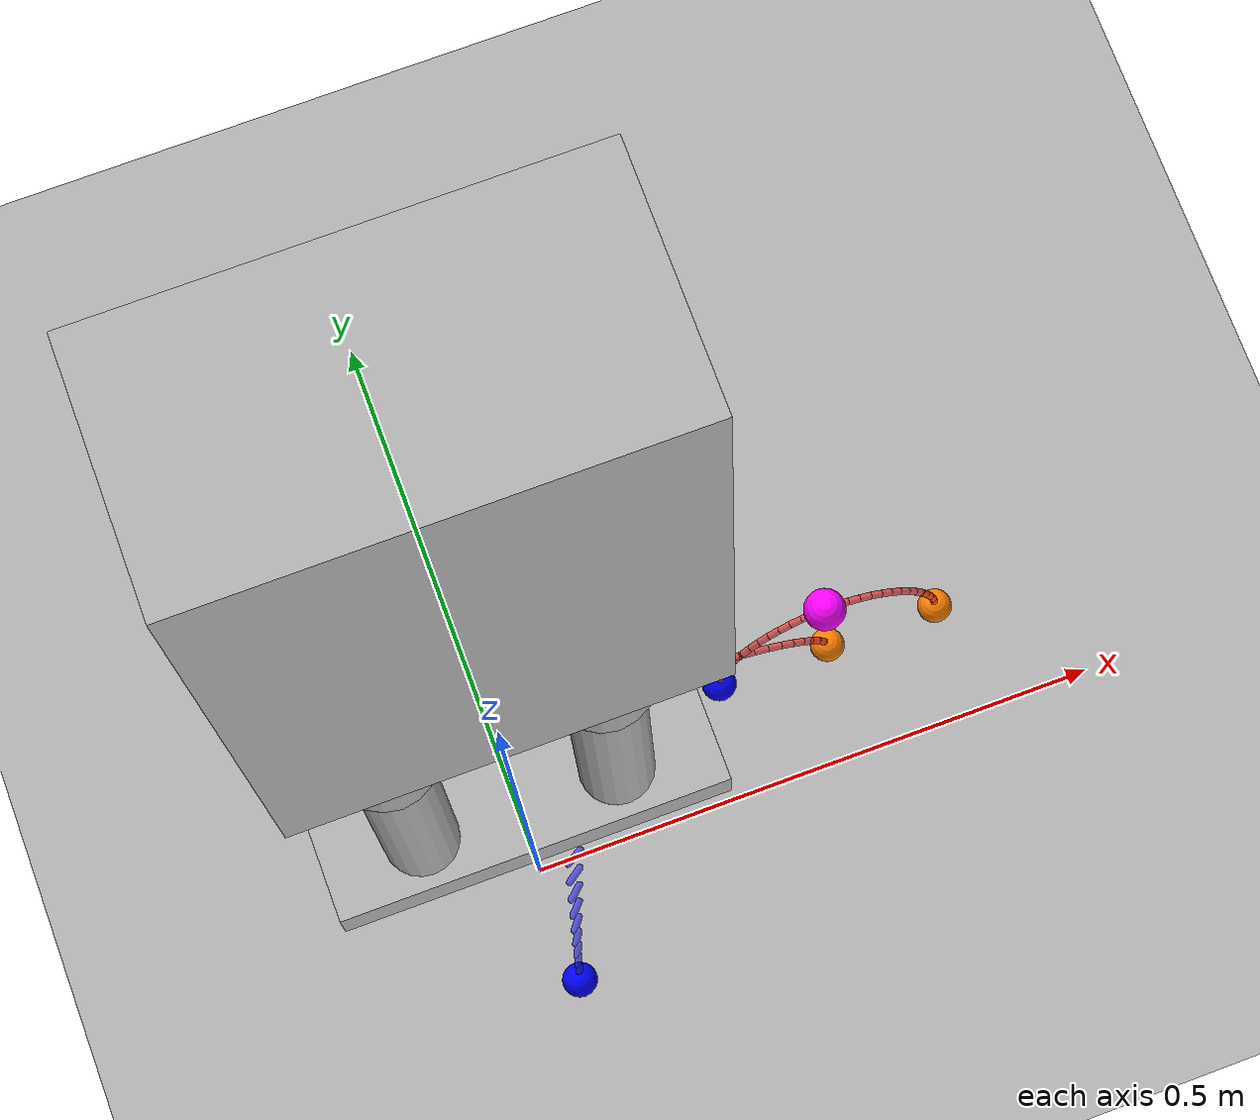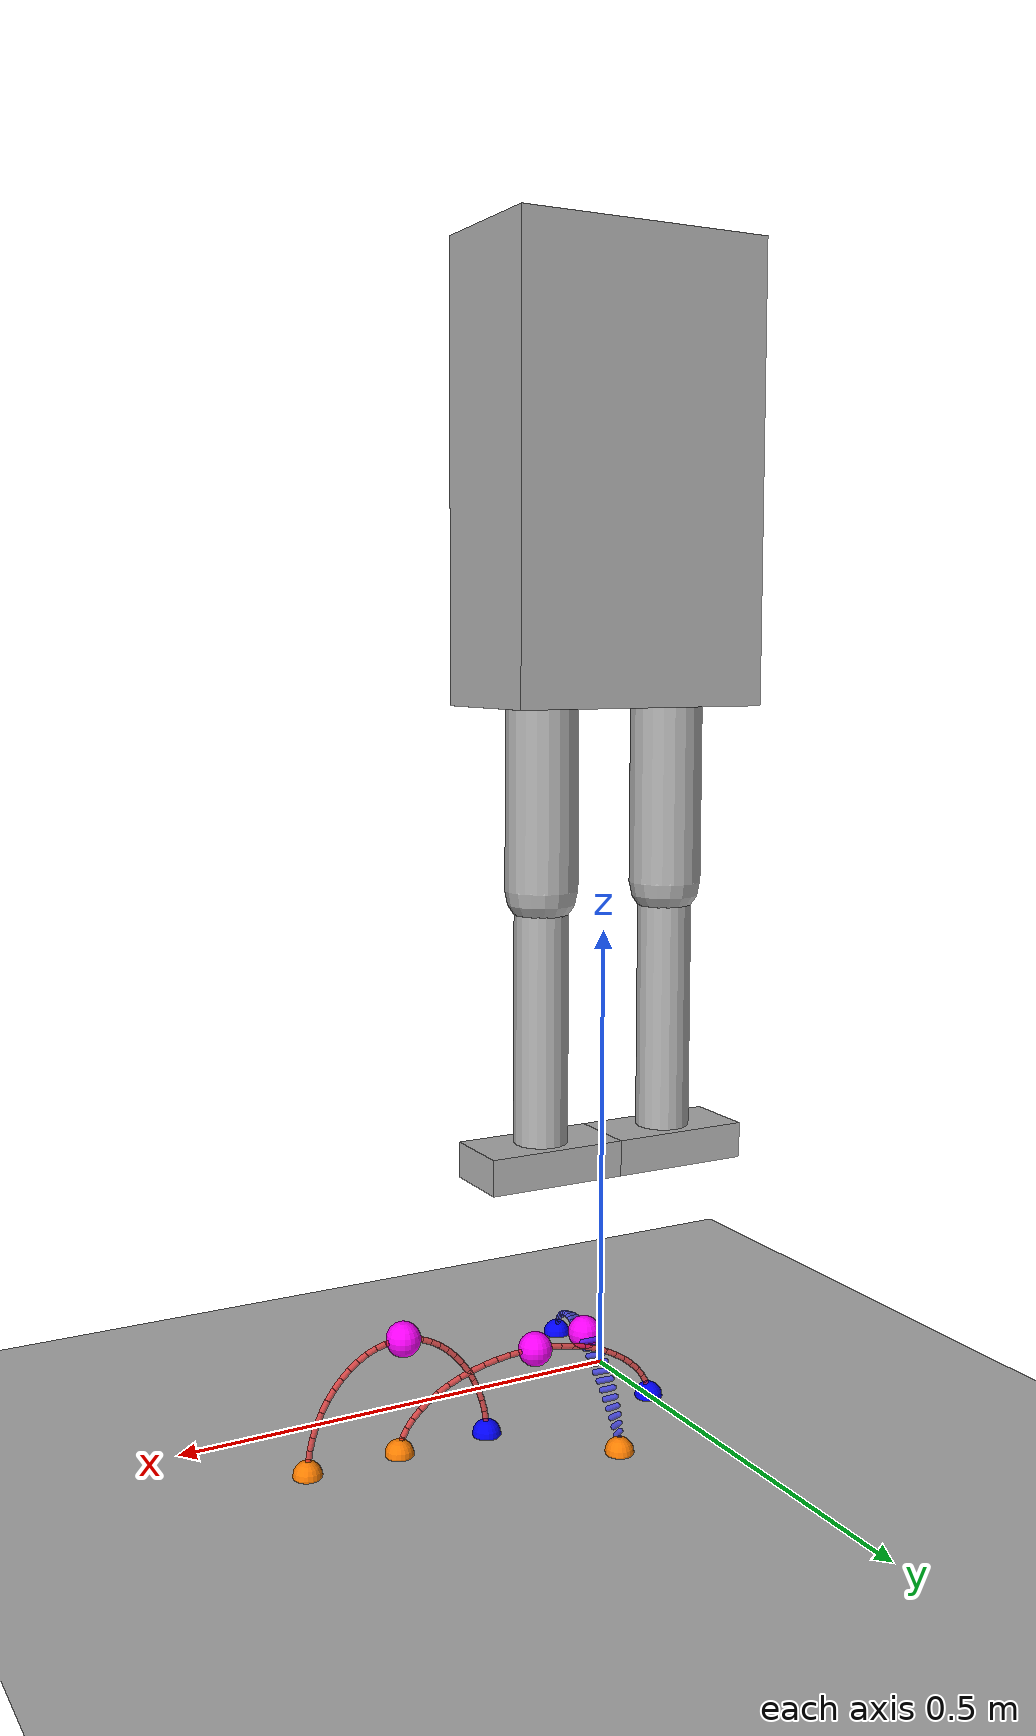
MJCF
<?xml version="1.0" ?>
<mujoco model="swing_trajectory_visualization">
    <compiler angle="degree" coordinate="local" inertiafromgeom="true"/>

    <option timestep="0.01" gravity="0 0 -9.81" integrator="RK4"/>

    <default>
        <joint armature="0.01" damping="0.1" limited="true"/>
        <geom contype="1" conaffinity="1" condim="3" friction="1 0.5 0.005"
              rgba="0.7 0.7 0.7 1" density="1000"/>
    </default>

    <asset>
        <texture name="grid" type="2d" builtin="checker" rgb1="0.1 0.2 0.3"
                 rgb2="0.2 0.3 0.4" width="300" height="300"/>
        <material name="grid" texture="grid" texrepeat="8 8" reflectance="0.2"/>
        <material name="robot" rgba="0.6 0.6 0.8 1"/>
        <material name="foot" rgba="0.8 0.4 0.2 1"/>
    </asset>

    <worldbody>
        <light diffuse="0.5 0.5 0.5" pos="0 0 3" dir="0 0 -1"/>
        <geom name="floor" size="3 3 0.1" type="plane" material="grid"/>

        <!-- 机器人躯干 -->
        <body name="torso" pos="0 0 1.0">
            <geom name="torso_geom" type="box" size="0.15 0.08 0.25" material="robot"/>
            <joint name="root_joint" type="free"/>

            <!-- 左腿 -->
            <body name="left_thigh" pos="-0.08 0 -0.15">
                <joint name="left_hip" type="hinge" axis="0 1 0" range="-90 90"/>
                <geom name="left_thigh_geom" type="capsule" size="0.04" fromto="0 0 0 0 0 -0.3" material="robot"/>

                <body name="left_shin" pos="0 0 -0.3">
                    <joint name="left_knee" type="hinge" axis="0 1 0" range="-120 0"/>
                    <geom name="left_shin_geom" type="capsule" size="0.03" fromto="0 0 0 0 0 -0.3" material="robot"/>

                    <body name="left_foot" pos="0 0 -0.3">
                        <joint name="left_ankle" type="hinge" axis="0 1 0" range="-45 45"/>
                        <geom name="left_foot_geom" type="box" size="0.08 0.04 0.02" material="foot"/>
                        <!-- 左脚标记点 -->
                        <site name="left_foot_site" pos="0 0 -0.02" size="0.01" rgba="1 0 0 1"/>
                    </body>
                </body>
            </body>

            <!-- 右腿 -->
            <body name="right_thigh" pos="0.08 0 -0.15">
                <joint name="right_hip" type="hinge" axis="0 1 0" range="-90 90"/>
                <geom name="right_thigh_geom" type="capsule" size="0.04" fromto="0 0 0 0 0 -0.3" material="robot"/>

                <body name="right_shin" pos="0 0 -0.3">
                    <joint name="right_knee" type="hinge" axis="0 1 0" range="-120 0"/>
                    <geom name="right_shin_geom" type="capsule" size="0.03" fromto="0 0 0 0 0 -0.3" material="robot"/>

                    <body name="right_foot" pos="0 0 -0.3">
                        <joint name="right_ankle" type="hinge" axis="0 1 0" range="-45 45"/>
                        <geom name="right_foot_geom" type="box" size="0.08 0.04 0.02" material="foot"/>
                        <!-- 右脚标记点 -->
                        <site name="right_foot_site" pos="0 0 -0.02" size="0.01" rgba="0 0 1 1"/>
                    </body>
                </body>
            </body>
        </body>

        <!-- 轨迹可视化几何体 -->

        <geom name="traj_left_foot_0_line_0"
              type="capsule"
              size="0.003 0.004356242746892611"
              pos="0.000523 0.100000 0.004325"
              euler="-0.000 6.892 0"
              rgba="1.0 0.2 0.2 0.7"
              contype="0" conaffinity="0"/>

        <geom name="traj_left_foot_0_line_1"
              type="capsule"
              size="0.003 0.004536001590332211"
              pos="0.002565 0.100000 0.012924"
              euler="-0.000 19.567 0"
              rgba="1.0 0.2 0.2 0.7"
              contype="0" conaffinity="0"/>

        <geom name="traj_left_foot_0_line_2"
              type="capsule"
              size="0.003 0.00483505290641974"
              pos="0.006525 0.100000 0.021371"
              euler="-0.000 30.331 0"
              rgba="1.0 0.2 0.2 0.7"
              contype="0" conaffinity="0"/>

        <geom name="traj_left_foot_0_line_3"
              type="capsule"
              size="0.003 0.005197636444869179"
              pos="0.012258 0.100000 0.029568"
              euler="-0.000 39.276 0"
              rgba="1.0 0.2 0.2 0.7"
              contype="0" conaffinity="0"/>

        <geom name="traj_left_foot_0_line_4"
              type="capsule"
              size="0.003 0.005583003044450209"
              pos="0.019613 0.100000 0.037418"
              euler="-0.000 46.733 0"
              rgba="1.0 0.2 0.2 0.7"
              contype="0" conaffinity="0"/>

        <geom name="traj_left_foot_0_line_5"
              type="capsule"
              size="0.003 0.005964088371380579"
              pos="0.028445 0.100000 0.044829"
              euler="-0.000 53.054 0"
              rgba="1.0 0.2 0.2 0.7"
              contype="0" conaffinity="0"/>

        <geom name="traj_left_foot_0_line_6"
              type="capsule"
              size="0.003 0.0063237658396060725"
              pos="0.038606 0.100000 0.051715"
              euler="-0.000 58.533 0"
              rgba="1.0 0.2 0.2 0.7"
              contype="0" conaffinity="0"/>

        <geom name="traj_left_foot_0_line_7"
              type="capsule"
              size="0.003 0.0066515033371338395"
              pos="0.049947 0.100000 0.057994"
              euler="-0.000 63.398 0"
              rgba="1.0 0.2 0.2 0.7"
              contype="0" conaffinity="0"/>

        <geom name="traj_left_foot_0_line_8"
              type="capsule"
              size="0.003 0.00694099252434492"
              pos="0.062321 0.100000 0.063594"
              euler="-0.000 67.813 0"
              rgba="1.0 0.2 0.2 0.7"
              contype="0" conaffinity="0"/>

        <geom name="traj_left_foot_0_line_9"
              type="capsule"
              size="0.003 0.007188588753213018"
              pos="0.075581 0.100000 0.068448"
              euler="-0.000 71.903 0"
              rgba="1.0 0.2 0.2 0.7"
              contype="0" conaffinity="0"/>

        <geom name="traj_left_foot_0_line_10"
              type="capsule"
              size="0.003 0.007392302599673258"
              pos="0.089579 0.100000 0.072500"
              euler="-0.000 75.758 0"
              rgba="1.0 0.2 0.2 0.7"
              contype="0" conaffinity="0"/>

        <geom name="traj_left_foot_0_line_11"
              type="capsule"
              size="0.003 0.007551144946266841"
              pos="0.104168 0.100000 0.075701"
              euler="-0.000 79.447 0"
              rgba="1.0 0.2 0.2 0.7"
              contype="0" conaffinity="0"/>

        <geom name="traj_left_foot_0_line_12"
              type="capsule"
              size="0.003 0.00766469801396434"
              pos="0.119199 0.100000 0.078015"
              euler="-0.000 83.023 0"
              rgba="1.0 0.2 0.2 0.7"
              contype="0" conaffinity="0"/>

        <geom name="traj_left_foot_0_line_13"
              type="capsule"
              size="0.003 0.007732835307638117"
              pos="0.134526 0.100000 0.079414"
              euler="-0.000 86.528 0"
              rgba="1.0 0.2 0.2 0.7"
              contype="0" conaffinity="0"/>

        <geom name="traj_left_foot_0_line_14"
              type="capsule"
              size="0.003 0.007755545532822206"
              pos="0.150000 0.100000 0.079883"
              euler="-0.000 90.000 0"
              rgba="1.0 0.2 0.2 0.7"
              contype="0" conaffinity="0"/>

        <geom name="traj_left_foot_0_line_15"
              type="capsule"
              size="0.003 0.007732835307638117"
              pos="0.165474 0.100000 0.079414"
              euler="-0.000 93.472 0"
              rgba="1.0 0.2 0.2 0.7"
              contype="0" conaffinity="0"/>

        <geom name="traj_left_foot_0_line_16"
              type="capsule"
              size="0.003 0.0076646980139643125"
              pos="0.180801 0.100000 0.078015"
              euler="-0.000 96.977 0"
              rgba="1.0 0.2 0.2 0.7"
              contype="0" conaffinity="0"/>

        <geom name="traj_left_foot_0_line_17"
              type="capsule"
              size="0.003 0.007551144946266863"
              pos="0.195832 0.100000 0.075701"
              euler="-0.000 100.553 0"
              rgba="1.0 0.2 0.2 0.7"
              contype="0" conaffinity="0"/>

        <geom name="traj_left_foot_0_line_18"
              type="capsule"
              size="0.003 0.007392302599673245"
              pos="0.210421 0.100000 0.072500"
              euler="-0.000 104.242 0"
              rgba="1.0 0.2 0.2 0.7"
              contype="0" conaffinity="0"/>

        <geom name="traj_left_foot_0_line_19"
              type="capsule"
              size="0.003 0.007188588753213044"
              pos="0.224419 0.100000 0.068448"
              euler="-0.000 108.097 0"
              rgba="1.0 0.2 0.2 0.7"
              contype="0" conaffinity="0"/>

        <geom name="traj_left_foot_0_line_20"
              type="capsule"
              size="0.003 0.006940992524344913"
              pos="0.237679 0.100000 0.063594"
              euler="-0.000 112.187 0"
              rgba="1.0 0.2 0.2 0.7"
              contype="0" conaffinity="0"/>

        <geom name="traj_left_foot_0_line_21"
              type="capsule"
              size="0.003 0.006651503337133827"
              pos="0.250053 0.100000 0.057994"
              euler="-0.000 116.602 0"
              rgba="1.0 0.2 0.2 0.7"
              contype="0" conaffinity="0"/>

        <geom name="traj_left_foot_0_line_22"
              type="capsule"
              size="0.003 0.006323765839606085"
              pos="0.261394 0.100000 0.051715"
              euler="-0.000 121.467 0"
              rgba="1.0 0.2 0.2 0.7"
              contype="0" conaffinity="0"/>

        <geom name="traj_left_foot_0_line_23"
              type="capsule"
              size="0.003 0.005964088371380579"
              pos="0.271555 0.100000 0.044829"
              euler="-0.000 126.946 0"
              rgba="1.0 0.2 0.2 0.7"
              contype="0" conaffinity="0"/>

        <geom name="traj_left_foot_0_line_24"
              type="capsule"
              size="0.003 0.005583003044450172"
              pos="0.280387 0.100000 0.037418"
              euler="-0.000 133.267 0"
              rgba="1.0 0.2 0.2 0.7"
              contype="0" conaffinity="0"/>

        <geom name="traj_left_foot_0_line_25"
              type="capsule"
              size="0.003 0.005197636444869227"
              pos="0.287742 0.100000 0.029568"
              euler="-0.000 140.724 0"
              rgba="1.0 0.2 0.2 0.7"
              contype="0" conaffinity="0"/>

        <geom name="traj_left_foot_0_line_26"
              type="capsule"
              size="0.003 0.004835052906419735"
              pos="0.293475 0.100000 0.021371"
              euler="-0.000 149.669 0"
              rgba="1.0 0.2 0.2 0.7"
              contype="0" conaffinity="0"/>

        <geom name="traj_left_foot_0_line_27"
              type="capsule"
              size="0.003 0.004536001590332207"
              pos="0.297435 0.100000 0.012924"
              euler="-0.000 160.433 0"
              rgba="1.0 0.2 0.2 0.7"
              contype="0" conaffinity="0"/>

        <geom name="traj_left_foot_0_line_28"
              type="capsule"
              size="0.003 0.004356242746892612"
              pos="0.299477 0.100000 0.004325"
              euler="-0.000 173.108 0"
              rgba="1.0 0.2 0.2 0.7"
              contype="0" conaffinity="0"/>

        <geom name="traj_left_foot_0_start"
              type="sphere"
              size="0.015"
              pos="0.000000 0.100000 0.000000"
              rgba="0.0 0.0 1.0 1.0"
              contype="0" conaffinity="0"/>

        <geom name="traj_left_foot_0_target"
              type="sphere"
              size="0.015"
              pos="0.300000 0.100000 0.000000"
              rgba="1.0 0.5 0.0 1.0"
              contype="0" conaffinity="0"/>

        <geom name="traj_left_foot_0_peak"
              type="sphere"
              size="0.018"
              pos="0.142244 0.100000 0.079883"
              rgba="1.0 0.0 1.0 1.0"
              contype="0" conaffinity="0"/>

        <geom name="traj_right_foot_1_line_29"
              type="capsule"
              size="0.003 0.003290047344363624"
              pos="0.000174 -0.099477 0.003244"
              euler="-9.143 3.075 0"
              rgba="0.2 0.2 1.0 0.7"
              contype="0" conaffinity="0"/>

        <geom name="traj_right_foot_1_line_30"
              type="capsule"
              size="0.003 0.003583248312253188"
              pos="0.000855 -0.097435 0.009693"
              euler="-25.084 8.977 0"
              rgba="0.2 0.2 1.0 0.7"
              contype="0" conaffinity="0"/>

        <geom name="traj_right_foot_1_line_31"
              type="capsule"
              size="0.003 0.004052242905846352"
              pos="0.002175 -0.093475 0.016028"
              euler="-37.053 14.576 0"
              rgba="0.2 0.2 1.0 0.7"
              contype="0" conaffinity="0"/>

        <geom name="traj_right_foot_1_line_32"
              type="capsule"
              size="0.003 0.00459738036376928"
              pos="0.004086 -0.087742 0.022176"
              euler="-45.702 19.975 0"
              rgba="0.2 0.2 1.0 0.7"
              contype="0" conaffinity="0"/>

        <geom name="traj_right_foot_1_line_33"
              type="capsule"
              size="0.003 0.005157523530968171"
              pos="0.006538 -0.080387 0.028063"
              euler="-52.021 25.276 0"
              rgba="0.2 0.2 1.0 0.7"
              contype="0" conaffinity="0"/>

        <geom name="traj_right_foot_1_line_34"
              type="capsule"
              size="0.003 0.005698461910463999"
              pos="0.009482 -0.071555 0.033622"
              euler="-56.767 30.581 0"
              rgba="0.2 0.2 1.0 0.7"
              contype="0" conaffinity="0"/>

        <geom name="traj_right_foot_1_line_35"
              type="capsule"
              size="0.003 0.006201235170844847"
              pos="0.012869 -0.061394 0.038786"
              euler="-60.435 35.988 0"
              rgba="0.2 0.2 1.0 0.7"
              contype="0" conaffinity="0"/>

        <geom name="traj_right_foot_1_line_36"
              type="capsule"
              size="0.003 0.006655173495628494"
              pos="0.016649 -0.050053 0.043496"
              euler="-63.335 41.587 0"
              rgba="0.2 0.2 1.0 0.7"
              contype="0" conaffinity="0"/>

        <geom name="traj_right_foot_1_line_37"
              type="capsule"
              size="0.003 0.007054178495003466"
              pos="0.020774 -0.037679 0.047696"
              euler="-65.658 47.461 0"
              rgba="0.2 0.2 1.0 0.7"
              contype="0" conaffinity="0"/>

        <geom name="traj_right_foot_1_line_38"
              type="capsule"
              size="0.003 0.007394742906671512"
              pos="0.025194 -0.024419 0.051336"
              euler="-67.523 53.674 0"
              rgba="0.2 0.2 1.0 0.7"
              contype="0" conaffinity="0"/>

        <geom name="traj_right_foot_1_line_39"
              type="capsule"
              size="0.003 0.007674863641709153"
              pos="0.029860 -0.010421 0.054375"
              euler="-69.000 60.270 0"
              rgba="0.2 0.2 1.0 0.7"
              contype="0" conaffinity="0"/>

        <geom name="traj_right_foot_1_line_40"
              type="capsule"
              size="0.003 0.00789342160445431"
              pos="0.034723 0.004168 0.056776"
              euler="-70.129 67.259 0"
              rgba="0.2 0.2 1.0 0.7"
              contype="0" conaffinity="0"/>

        <geom name="traj_right_foot_1_line_41"
              type="capsule"
              size="0.003 0.008049815466060522"
              pos="0.039733 0.019199 0.058511"
              euler="-70.928 74.605 0"
              rgba="0.2 0.2 1.0 0.7"
              contype="0" conaffinity="0"/>

        <geom name="traj_right_foot_1_line_42"
              type="capsule"
              size="0.003 0.008143741384563585"
              pos="0.044842 0.034526 0.059561"
              euler="-71.406 82.227 0"
              rgba="0.2 0.2 1.0 0.7"
              contype="0" conaffinity="0"/>

        <geom name="traj_right_foot_1_line_43"
              type="capsule"
              size="0.003 0.008175062793620775"
              pos="0.050000 0.050000 0.059912"
              euler="-71.565 90.000 0"
              rgba="0.2 0.2 1.0 0.7"
              contype="0" conaffinity="0"/>

        <geom name="traj_right_foot_1_line_44"
              type="capsule"
              size="0.003 0.008143741384563585"
              pos="0.055158 0.065474 0.059561"
              euler="-71.406 97.773 0"
              rgba="0.2 0.2 1.0 0.7"
              contype="0" conaffinity="0"/>

        <geom name="traj_right_foot_1_line_45"
              type="capsule"
              size="0.003 0.0080498154660605"
              pos="0.060267 0.080801 0.058511"
              euler="-70.928 105.395 0"
              rgba="0.2 0.2 1.0 0.7"
              contype="0" conaffinity="0"/>

        <geom name="traj_right_foot_1_line_46"
              type="capsule"
              size="0.003 0.007893421604454318"
              pos="0.065277 0.095832 0.056776"
              euler="-70.129 112.741 0"
              rgba="0.2 0.2 1.0 0.7"
              contype="0" conaffinity="0"/>

        <geom name="traj_right_foot_1_line_47"
              type="capsule"
              size="0.003 0.007674863641709155"
              pos="0.070140 0.110421 0.054375"
              euler="-69.000 119.730 0"
              rgba="0.2 0.2 1.0 0.7"
              contype="0" conaffinity="0"/>

        <geom name="traj_right_foot_1_line_48"
              type="capsule"
              size="0.003 0.00739474290667154"
              pos="0.074806 0.124419 0.051336"
              euler="-67.523 126.326 0"
              rgba="0.2 0.2 1.0 0.7"
              contype="0" conaffinity="0"/>

        <geom name="traj_right_foot_1_line_49"
              type="capsule"
              size="0.003 0.007054178495003455"
              pos="0.079226 0.137679 0.047696"
              euler="-65.658 132.539 0"
              rgba="0.2 0.2 1.0 0.7"
              contype="0" conaffinity="0"/>

        <geom name="traj_right_foot_1_line_50"
              type="capsule"
              size="0.003 0.0066551734956284804"
              pos="0.083351 0.150053 0.043496"
              euler="-63.335 138.413 0"
              rgba="0.2 0.2 1.0 0.7"
              contype="0" conaffinity="0"/>

        <geom name="traj_right_foot_1_line_51"
              type="capsule"
              size="0.003 0.006201235170844857"
              pos="0.087131 0.161394 0.038786"
              euler="-60.435 144.012 0"
              rgba="0.2 0.2 1.0 0.7"
              contype="0" conaffinity="0"/>

        <geom name="traj_right_foot_1_line_52"
              type="capsule"
              size="0.003 0.005698461910464008"
              pos="0.090518 0.171555 0.033622"
              euler="-56.767 149.419 0"
              rgba="0.2 0.2 1.0 0.7"
              contype="0" conaffinity="0"/>

        <geom name="traj_right_foot_1_line_53"
              type="capsule"
              size="0.003 0.005157523530968123"
              pos="0.093462 0.180387 0.028063"
              euler="-52.021 154.724 0"
              rgba="0.2 0.2 1.0 0.7"
              contype="0" conaffinity="0"/>

        <geom name="traj_right_foot_1_line_54"
              type="capsule"
              size="0.003 0.00459738036376934"
              pos="0.095914 0.187742 0.022176"
              euler="-45.702 160.025 0"
              rgba="0.2 0.2 1.0 0.7"
              contype="0" conaffinity="0"/>

        <geom name="traj_right_foot_1_line_55"
              type="capsule"
              size="0.003 0.004052242905846346"
              pos="0.097825 0.193475 0.016028"
              euler="-37.053 165.424 0"
              rgba="0.2 0.2 1.0 0.7"
              contype="0" conaffinity="0"/>

        <geom name="traj_right_foot_1_line_56"
              type="capsule"
              size="0.003 0.003583248312253179"
              pos="0.099145 0.197435 0.009693"
              euler="-25.084 171.023 0"
              rgba="0.2 0.2 1.0 0.7"
              contype="0" conaffinity="0"/>

        <geom name="traj_right_foot_1_line_57"
              type="capsule"
              size="0.003 0.003290047344363625"
              pos="0.099826 0.199477 0.003244"
              euler="-9.143 176.925 0"
              rgba="0.2 0.2 1.0 0.7"
              contype="0" conaffinity="0"/>

        <geom name="traj_right_foot_1_start"
              type="sphere"
              size="0.015"
              pos="0.000000 -0.100000 0.000000"
              rgba="0.0 0.0 1.0 1.0"
              contype="0" conaffinity="0"/>

        <geom name="traj_right_foot_1_target"
              type="sphere"
              size="0.015"
              pos="0.100000 0.200000 0.000000"
              rgba="1.0 0.5 0.0 1.0"
              contype="0" conaffinity="0"/>

        <geom name="traj_right_foot_1_peak"
              type="sphere"
              size="0.018"
              pos="0.047415 0.042244 0.059912"
              rgba="1.0 0.0 1.0 1.0"
              contype="0" conaffinity="0"/>

        <geom name="traj_left_foot_2_line_58"
              type="capsule"
              size="0.003 0.006496496314239025"
              pos="0.200349 0.100000 0.006487"
              euler="-0.000 3.075 0"
              rgba="1.0 0.2 0.2 0.7"
              contype="0" conaffinity="0"/>

        <geom name="traj_left_foot_2_line_59"
              type="capsule"
              size="0.003 0.0064905840046770875"
              pos="0.201710 0.100000 0.019385"
              euler="-0.000 8.977 0"
              rgba="1.0 0.2 0.2 0.7"
              contype="0" conaffinity="0"/>

        <geom name="traj_left_foot_2_line_60"
              type="capsule"
              size="0.003 0.006468043933057623"
              pos="0.204350 0.100000 0.032056"
              euler="-0.000 14.576 0"
              rgba="1.0 0.2 0.2 0.7"
              contype="0" conaffinity="0"/>

        <geom name="traj_left_foot_2_line_61"
              type="capsule"
              size="0.003 0.006421544000066008"
              pos="0.208172 0.100000 0.044351"
              euler="-0.000 19.975 0"
              rgba="1.0 0.2 0.2 0.7"
              contype="0" conaffinity="0"/>

        <geom name="traj_left_foot_2_line_62"
              type="capsule"
              size="0.003 0.006347572362940741"
              pos="0.213076 0.100000 0.056127"
              euler="-0.000 25.276 0"
              rgba="1.0 0.2 0.2 0.7"
              contype="0" conaffinity="0"/>

        <geom name="traj_left_foot_2_line_63"
              type="capsule"
              size="0.003 0.0062459624581167085"
              pos="0.218963 0.100000 0.067244"
              euler="-0.000 30.581 0"
              rgba="1.0 0.2 0.2 0.7"
              contype="0" conaffinity="0"/>

        <geom name="traj_left_foot_2_line_64"
              type="capsule"
              size="0.003 0.00611946683811324"
              pos="0.225737 0.100000 0.077572"
              euler="-0.000 35.988 0"
              rgba="1.0 0.2 0.2 0.7"
              contype="0" conaffinity="0"/>

        <geom name="traj_left_foot_2_line_65"
              type="capsule"
              size="0.003 0.0059733818907709985"
              pos="0.233298 0.100000 0.086992"
              euler="-0.000 41.587 0"
              rgba="1.0 0.2 0.2 0.7"
              contype="0" conaffinity="0"/>

        <geom name="traj_left_foot_2_line_66"
              type="capsule"
              size="0.003 0.005815188883182319"
              pos="0.241547 0.100000 0.095391"
              euler="-0.000 47.461 0"
              rgba="1.0 0.2 0.2 0.7"
              contype="0" conaffinity="0"/>

        <geom name="traj_left_foot_2_line_67"
              type="capsule"
              size="0.003 0.005654150471342546"
              pos="0.250387 0.100000 0.102672"
              euler="-0.000 53.674 0"
              rgba="1.0 0.2 0.2 0.7"
              contype="0" conaffinity="0"/>

        <geom name="traj_left_foot_2_line_68"
              type="capsule"
              size="0.003 0.005500782825818185"
              pos="0.259720 0.100000 0.108749"
              euler="-0.000 60.270 0"
              rgba="1.0 0.2 0.2 0.7"
              contype="0" conaffinity="0"/>

        <geom name="traj_left_foot_2_line_69"
              type="capsule"
              size="0.003 0.0053661205810922735"
              pos="0.269445 0.100000 0.113552"
              euler="-0.000 67.259 0"
              rgba="1.0 0.2 0.2 0.7"
              contype="0" conaffinity="0"/>

        <geom name="traj_left_foot_2_line_70"
              type="capsule"
              size="0.003 0.005260725559146721"
              pos="0.279466 0.100000 0.117023"
              euler="-0.000 74.605 0"
              rgba="1.0 0.2 0.2 0.7"
              contype="0" conaffinity="0"/>

        <geom name="traj_left_foot_2_line_71"
              type="capsule"
              size="0.003 0.005193482042027082"
              pos="0.289684 0.100000 0.119122"
              euler="-0.000 82.227 0"
              rgba="1.0 0.2 0.2 0.7"
              contype="0" conaffinity="0"/>

        <geom name="traj_left_foot_2_line_72"
              type="capsule"
              size="0.003 0.005170363688548146"
              pos="0.300000 0.100000 0.119824"
              euler="-0.000 90.000 0"
              rgba="1.0 0.2 0.2 0.7"
              contype="0" conaffinity="0"/>

        <geom name="traj_left_foot_2_line_73"
              type="capsule"
              size="0.003 0.005193482042027109"
              pos="0.310316 0.100000 0.119122"
              euler="-0.000 97.773 0"
              rgba="1.0 0.2 0.2 0.7"
              contype="0" conaffinity="0"/>

        <geom name="traj_left_foot_2_line_74"
              type="capsule"
              size="0.003 0.0052607255591466656"
              pos="0.320534 0.100000 0.117023"
              euler="-0.000 105.395 0"
              rgba="1.0 0.2 0.2 0.7"
              contype="0" conaffinity="0"/>

        <geom name="traj_left_foot_2_line_75"
              type="capsule"
              size="0.003 0.005366120581092276"
              pos="0.330555 0.100000 0.113552"
              euler="-0.000 112.741 0"
              rgba="1.0 0.2 0.2 0.7"
              contype="0" conaffinity="0"/>

        <geom name="traj_left_foot_2_line_76"
              type="capsule"
              size="0.003 0.005500782825818208"
              pos="0.340280 0.100000 0.108749"
              euler="-0.000 119.730 0"
              rgba="1.0 0.2 0.2 0.7"
              contype="0" conaffinity="0"/>

        <geom name="traj_left_foot_2_line_77"
              type="capsule"
              size="0.003 0.005654150471342546"
              pos="0.349613 0.100000 0.102672"
              euler="-0.000 126.326 0"
              rgba="1.0 0.2 0.2 0.7"
              contype="0" conaffinity="0"/>

        <geom name="traj_left_foot_2_line_78"
              type="capsule"
              size="0.003 0.005815188883182319"
              pos="0.358453 0.100000 0.095391"
              euler="-0.000 132.539 0"
              rgba="1.0 0.2 0.2 0.7"
              contype="0" conaffinity="0"/>

        <geom name="traj_left_foot_2_line_79"
              type="capsule"
              size="0.003 0.005973381890770979"
              pos="0.366702 0.100000 0.086992"
              euler="-0.000 138.413 0"
              rgba="1.0 0.2 0.2 0.7"
              contype="0" conaffinity="0"/>

        <geom name="traj_left_foot_2_line_80"
              type="capsule"
              size="0.003 0.006119466838113259"
              pos="0.374263 0.100000 0.077572"
              euler="-0.000 144.012 0"
              rgba="1.0 0.2 0.2 0.7"
              contype="0" conaffinity="0"/>

        <geom name="traj_left_foot_2_line_81"
              type="capsule"
              size="0.003 0.006245962458116694"
              pos="0.381037 0.100000 0.067244"
              euler="-0.000 149.419 0"
              rgba="1.0 0.2 0.2 0.7"
              contype="0" conaffinity="0"/>

        <geom name="traj_left_foot_2_line_82"
              type="capsule"
              size="0.003 0.006347572362940721"
              pos="0.386924 0.100000 0.056127"
              euler="-0.000 154.724 0"
              rgba="1.0 0.2 0.2 0.7"
              contype="0" conaffinity="0"/>

        <geom name="traj_left_foot_2_line_83"
              type="capsule"
              size="0.003 0.006421544000066024"
              pos="0.391828 0.100000 0.044351"
              euler="-0.000 160.025 0"
              rgba="1.0 0.2 0.2 0.7"
              contype="0" conaffinity="0"/>

        <geom name="traj_left_foot_2_line_84"
              type="capsule"
              size="0.003 0.006468043933057636"
              pos="0.395650 0.100000 0.032056"
              euler="-0.000 165.424 0"
              rgba="1.0 0.2 0.2 0.7"
              contype="0" conaffinity="0"/>

        <geom name="traj_left_foot_2_line_85"
              type="capsule"
              size="0.003 0.006490584004677085"
              pos="0.398290 0.100000 0.019385"
              euler="-0.000 171.023 0"
              rgba="1.0 0.2 0.2 0.7"
              contype="0" conaffinity="0"/>

        <geom name="traj_left_foot_2_line_86"
              type="capsule"
              size="0.003 0.006496496314239026"
              pos="0.399651 0.100000 0.006487"
              euler="-0.000 176.925 0"
              rgba="1.0 0.2 0.2 0.7"
              contype="0" conaffinity="0"/>

        <geom name="traj_left_foot_2_start"
              type="sphere"
              size="0.015"
              pos="0.200000 0.100000 0.000000"
              rgba="0.0 0.0 1.0 1.0"
              contype="0" conaffinity="0"/>

        <geom name="traj_left_foot_2_target"
              type="sphere"
              size="0.015"
              pos="0.400000 0.100000 0.000000"
              rgba="1.0 0.5 0.0 1.0"
              contype="0" conaffinity="0"/>

        <geom name="traj_left_foot_2_peak"
              type="sphere"
              size="0.018"
              pos="0.294830 0.100000 0.119824"
              rgba="1.0 0.0 1.0 1.0"
              contype="0" conaffinity="0"/>

    </worldbody>

    <actuator>
        <motor name="left_hip_motor" joint="left_hip" gear="100"/>
        <motor name="left_knee_motor" joint="left_knee" gear="100"/>
        <motor name="left_ankle_motor" joint="left_ankle" gear="50"/>
        <motor name="right_hip_motor" joint="right_hip" gear="100"/>
        <motor name="right_knee_motor" joint="right_knee" gear="100"/>
        <motor name="right_ankle_motor" joint="right_ankle" gear="50"/>
    </actuator>
</mujoco>
